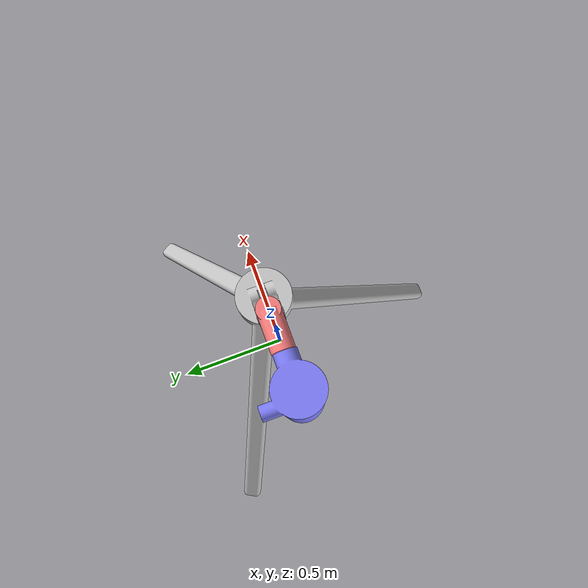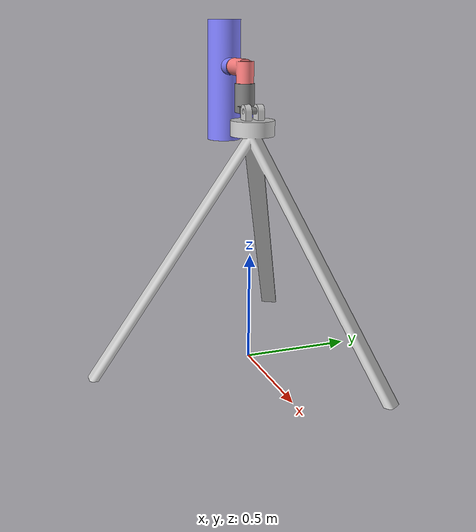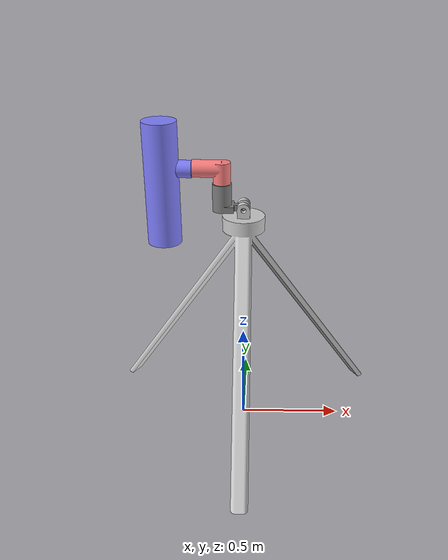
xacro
<?xml version="1.0" encoding="utf-8"?>
<robot name="telescope_description" xmlns:xacro="http://www.ros.org/wiki/xacro">
	<link name="world"/>

	<link name="base_link">
		<inertial>
			<origin xyz="-0.684 0.42 1.201" rpy="3.14159 0 0"/>
			<mass value="1.0"/>
			<inertia ixx="0.001" ixy="0.0" ixz="0.0" iyy="0.001" iyz="0.0" izz="0.001"/>
		</inertial>
		<visual>
			<origin xyz="-0.684 0.42 1.201" rpy="3.14159 0 0"/>
			<geometry>
				<mesh filename="package://telescope_description/meshes/mount_base.STL" scale="0.001 0.001 0.001"/>
			</geometry>
			<material name="base_material">
				<color rgba="0.8 0.8 0.8 1.0"/>
			</material>
		</visual>
		<collision>
			<origin xyz="-0.684 0.42 1.201" rpy="3.14159 0 0"/>
			<geometry>
				<mesh filename="package://telescope_description/meshes/mount_base.STL" scale="0.001 0.001 0.001"/>
			</geometry>
		</collision>
	</link>

	<joint name="fixed_link" type="fixed">
		<parent link="world"/>
		<child link="base_link"/>
		<origin xyz="0 0 0" rpy="0 0 0"/>
	</joint>

	<link name="polar_align_link">
		<inertial>
			<origin xyz="0.015 -0.039 -0.014" rpy="0 0 1.570795"/>
			<mass value="0.5"/>
			<inertia ixx="0.001" ixy="0.0" ixz="0.0" iyy="0.001" iyz="0.0" izz="0.001"/>
		</inertial>
		<visual>
			<origin xyz="0.015 -0.039 -0.014" rpy="0 0 1.570795"/>
			<geometry>
				<mesh filename="package://telescope_description/meshes/mount_link_1.STL" scale="0.001 0.001 0.001"/>
			</geometry>
			<material name="mount_material">
				<color rgba="0.5 0.5 0.5 1.0"/>
			</material>
		</visual>
		<collision>
			<origin xyz="0.015 -0.039 -0.014" rpy="0 0 1.570795"/>
			<geometry>
				<mesh filename="package://telescope_description/meshes/mount_link_1.STL" scale="0.001 0.001 0.001"/>
			</geometry>
		</collision>
	</link>

	<joint name="polar_align_joint" type="revolute">
		<parent link="base_link"/>
		<child link="polar_align_link"/>
		<origin xyz="0 0 1.17" rpy="0 0 0"/>
		<axis xyz="0 1 0"/>
		<limit lower="0" upper="1.570795" effort="1000.0" velocity="0.1"/>
	</joint>

	<xacro:property name="polar_align_default" value="0.584913" /> <!-- 33.5102 degrees -->

	<link name="ra_link">
		<inertial>
			<origin xyz="0.043 0.04 0.11" rpy="0 3.14159 1.570795"/>
			<mass value="0.5"/>
			<inertia ixx="0.001" ixy="0.0" ixz="0.0" iyy="0.001" iyz="0.0" izz="0.001"/>
		</inertial>
		<visual>
			<origin xyz="0.043 0.04 0.11" rpy="0 3.14159 1.570795"/>
			<geometry>
				<mesh filename="package://telescope_description/meshes/mount_link_2.STL" scale="0.001 0.001 0.001"/>
			</geometry>
			<material name="mount_material">
				<color rgba="1 0.5 0.5 1.0"/>
			</material>
		</visual>
		<collision>
			<origin xyz="0.043 0.04 0.11" rpy="0 3.14159 1.570795"/>
			<geometry>
				<mesh filename="package://telescope_description/meshes/mount_link_2.STL" scale="0.001 0.001 0.001"/>
			</geometry>
		</collision>
	</link>
	<joint name="ra_joint" type="revolute">
		<parent link="polar_align_link"/>
		<child link="ra_link"/>
		<origin xyz="-0.1 0.01 0.115" rpy="0 0 4.71239"/>
		<axis xyz="0 0 1"/>
		<limit lower="-1.570795" upper="1.570795" effort="1000.0" velocity="0.1"/>
	</joint>

	<xacro:property name="ra_default" value="0" /> <!-- 0 degrees, continuous rotation -->

	<link name="dec_link">
		<inertial>
			<origin xyz="0.081 -0.22 -0.358" rpy="0 0 1.570795"/>
			<mass value="0.5"/>
			<inertia ixx="0.001" ixy="0.0" ixz="0.0" iyy="0.001" iyz="0.0" izz="0.001"/>
		</inertial>
		<visual>
			<origin xyz="0.081 -0.22 -0.358" rpy="0 0 1.570795"/>
			<geometry>
				<mesh filename="package://telescope_description/meshes/telescope_tube.STL" scale="0.001 0.001 0.001"/>
			</geometry>
			<material name="mount_material">
				<color rgba="0.5 0.5 1 1.0"/>
			</material>
		</visual>
		<collision>
			<origin xyz="0.081 -0.22 -0.358" rpy="0 0 1.570795"/>
			<geometry>
				<mesh filename="package://telescope_description/meshes/telescope_tube.STL" scale="0.001 0.001 0.001"/>
			</geometry>
		</collision>
	</link>

	<joint name="dec_joint" type="revolute">
		<parent link="ra_link"/>
		<child link="dec_link"/>
		<origin xyz="0.005 -0.135 0.069" rpy="0 0 0"/>
		<axis xyz="0 -1 0"/>
		<!-- Mechanical DEC travel uses 0..360 deg with midpoint at 180 deg. -->
		<limit lower="0.0" upper="6.283185" effort="1000.0" velocity="0.1"/>
	</joint>

	<xacro:property name="dec_default" value="3.141592" /> <!-- 180 degrees (mechanical center) -->
</robot>
